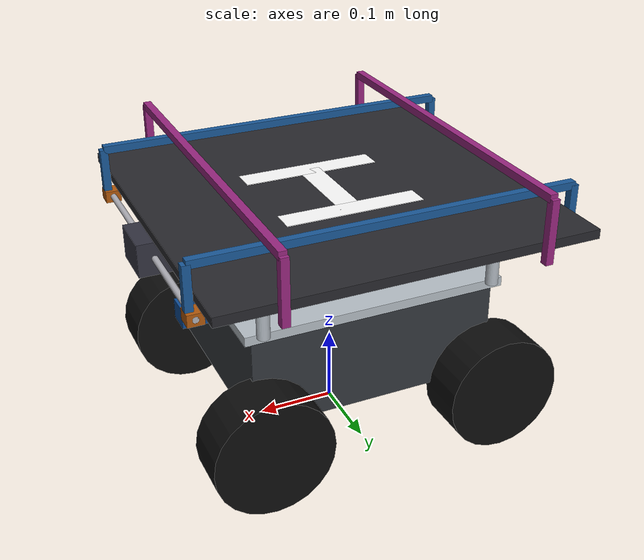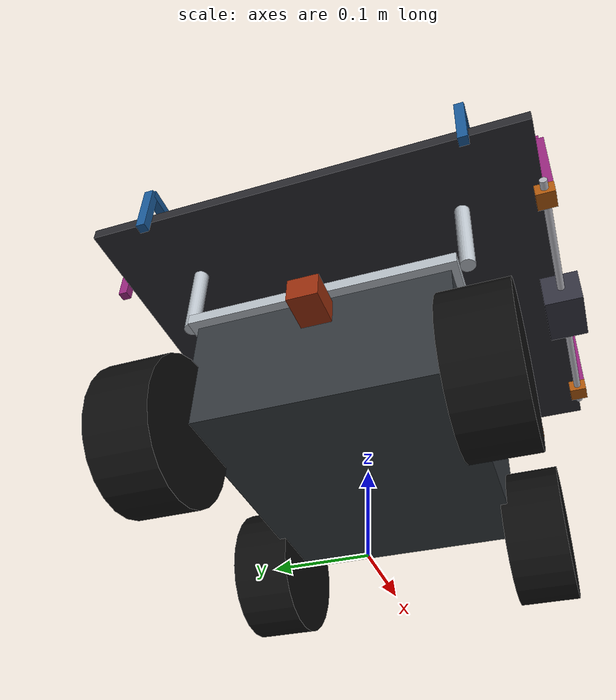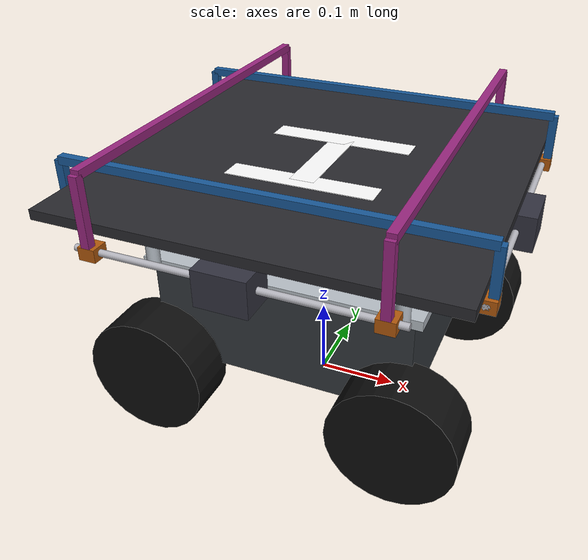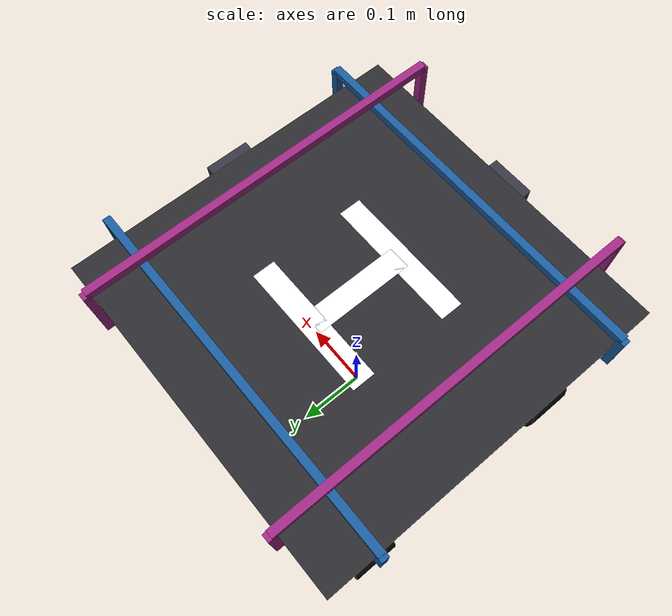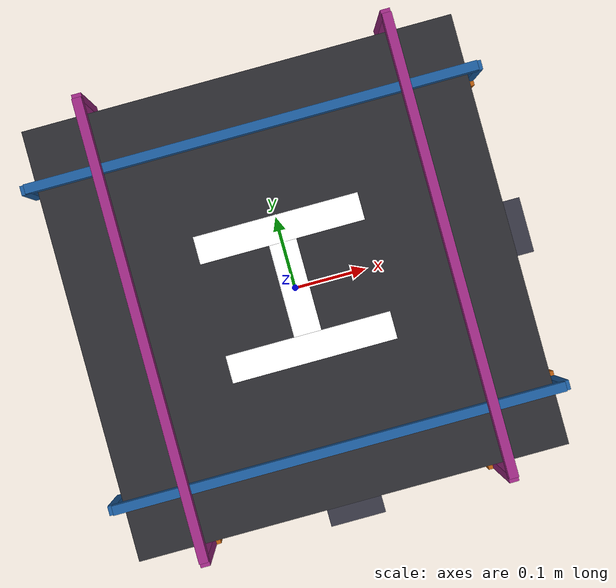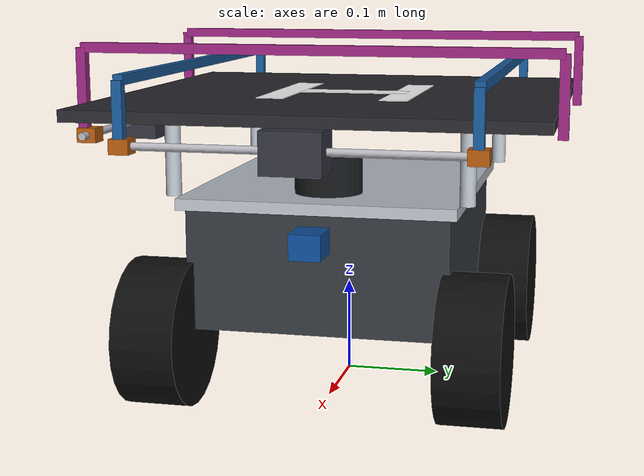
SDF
<?xml version="1.0"?>
<sdf version="1.9">
  <model name="r680_4wd">
    <self_collide>false</self_collide>

    <link name="base_link">
      <!-- base_link 与轮轴同高（轮半径 0.076） -->
      <pose>0 0 0.076 0 0 0</pose>
      <inertial>
        <mass>16.0</mass>
        <pose>0 0 0.070 0 0 0</pose>
        <inertia>
          <ixx>0.104700</ixx><iyy>0.144033</iyy><izz>0.233733</izz>
        </inertia>
      </inertial>
      <!-- 简化碰撞体：底部距地约 81 mm，不遮挡车轮 -->
      <collision name="body_collision">
        <pose>0 0 0.070 0 0 0</pose>
        <geometry><box><size>0.320 0.270 0.130</size></box></geometry>
      </collision>
      <visual name="body_visual">
        <pose>0 0 0.070 0 0 0</pose>
        <geometry><box><size>0.320 0.270 0.130</size></box></geometry>
        <material>
          <ambient>0.10 0.11 0.12 1</ambient>
          <diffuse>0.20 0.22 0.24 1</diffuse>
        </material>
      </visual>
      <!-- 上层安装铝板 -->
      <visual name="deck_visual">
        <pose>0 0 0.136 0 0 0</pose>
        <geometry><box><size>0.340 0.285 0.012</size></box></geometry>
        <material>
          <ambient>0.60 0.62 0.65 1</ambient>
          <diffuse>0.72 0.75 0.78 1</diffuse>
        </material>
      </visual>
    </link>

    <!-- 无人机停机坪：450x450x12 mm。平台以四根立柱架高，底面相对
         base_link 为 0.224 m，高于激光雷达顶面 42 mm，避免几何互穿。
         停机坪为固定载荷，不改变底盘轴距、轮距、转向限位和驱动参数。 -->
    <link name="landing_pad_link">
      <pose relative_to="base_link">0 0 0.230 0 0 0</pose>
      <inertial>
        <mass>1.20</mass>
        <inertia>
          <ixx>0.022090</ixx><iyy>0.022090</iyy><izz>0.044180</izz>
        </inertia>
      </inertial>
      <collision name="pad_collision">
        <geometry><box><size>0.470 0.470 0.012</size></box></geometry>
      </collision>
      <visual name="pad_visual">
        <geometry><box><size>0.470 0.470 0.012</size></box></geometry>
        <material><ambient>0.08 0.08 0.09 1</ambient><diffuse>0.16 0.16 0.18 1</diffuse></material>
      </visual>
      <!-- 白色 H 标识（仅视觉层，略高于平台表面防止闪烁）。 -->
      <visual name="landing_h_left">
        <pose>0 0.065 0.0065 0 0 0</pose>
        <geometry><box><size>0.180 0.030 0.001</size></box></geometry>
        <material><ambient>1 1 1 1</ambient><diffuse>1 1 1 1</diffuse></material>
      </visual>
      <visual name="landing_h_right">
        <pose>0 -0.065 0.0065 0 0 0</pose>
        <geometry><box><size>0.180 0.030 0.001</size></box></geometry>
        <material><ambient>1 1 1 1</ambient><diffuse>1 1 1 1</diffuse></material>
      </visual>
      <visual name="landing_h_crossbar">
        <pose>0 0 0.0065 0 0 0</pose>
        <geometry><box><size>0.030 0.130 0.001</size></box></geometry>
        <material><ambient>1 1 1 1</ambient><diffuse>1 1 1 1</diffuse></material>
      </visual>
      <!-- 支撑柱坐标相对停机坪中心：柱中心低于平台 47 mm。支柱只作
           视觉建模，避免同车激光雷达把它们识别为 0.13~0.30 m 近障；
           平台主体仍保留完整碰撞体，平面外廓由避障 footprint 覆盖。 -->
      <visual name="front_left_support_visual"><pose>0.150 0.150 -0.047 0 0 0</pose><geometry><cylinder><radius>0.008</radius><length>0.082</length></cylinder></geometry><material><ambient>0.55 0.57 0.60 1</ambient><diffuse>0.72 0.75 0.78 1</diffuse></material><visibility_flags>2</visibility_flags></visual>
      <visual name="front_right_support_visual"><pose>0.150 -0.150 -0.047 0 0 0</pose><geometry><cylinder><radius>0.008</radius><length>0.082</length></cylinder></geometry><material><ambient>0.55 0.57 0.60 1</ambient><diffuse>0.72 0.75 0.78 1</diffuse></material><visibility_flags>2</visibility_flags></visual>
      <visual name="rear_left_support_visual"><pose>-0.150 0.150 -0.047 0 0 0</pose><geometry><cylinder><radius>0.008</radius><length>0.082</length></cylinder></geometry><material><ambient>0.55 0.57 0.60 1</ambient><diffuse>0.72 0.75 0.78 1</diffuse></material><visibility_flags>2</visibility_flags></visual>
      <visual name="rear_right_support_visual"><pose>-0.150 -0.150 -0.047 0 0 0</pose><geometry><cylinder><radius>0.008</radius><length>0.082</length></cylinder></geometry><material><ambient>0.55 0.57 0.60 1</ambient><diffuse>0.72 0.75 0.78 1</diffuse></material><visibility_flags>2</visibility_flags></visual>
    </link>
    <joint name="landing_pad_joint" type="fixed"><parent>base_link</parent><child>landing_pad_link</child></joint>

    <link name="screw_motor_a_link">
      <pose relative_to="landing_pad_link">0.235 0 -0.027 0 0 0</pose>
      <inertial><mass>0.28</mass><inertia><ixx>0.0001</ixx><iyy>0.0001</iyy><izz>0.0001</izz></inertia></inertial>
      <collision name="motor_collision">
        <geometry><box><size>0.042 0.060 0.042</size></box></geometry>
      </collision>
      <visual name="motor_visual">
        <geometry><box><size>0.042 0.060 0.042</size></box></geometry>
        <material><ambient>0.10 0.10 0.12 1</ambient><diffuse>0.20 0.20 0.25 1</diffuse></material>
      </visual>
      <!-- T8 丝杆（中段 40mm 藏于电机体内）：轴沿 Y -->
      <visual name="screw_visual">
        <pose>0 0 0 1.57079632679 0 0</pose>
        <geometry><cylinder><radius>0.004</radius><length>0.360</length></cylinder></geometry>
        <material><ambient>0.55 0.55 0.58 1</ambient><diffuse>0.70 0.70 0.73 1</diffuse></material>
      </visual>
    </link>
    <joint name="screw_motor_a_joint" type="fixed"><parent>landing_pad_link</parent><child>screw_motor_a_link</child></joint>

    <link name="screw_motor_b_link">
      <pose relative_to="landing_pad_link">0 -0.235 -0.027 0 0 0</pose>
      <inertial><mass>0.28</mass><inertia><ixx>0.0001</ixx><iyy>0.0001</iyy><izz>0.0001</izz></inertia></inertial>
      <collision name="motor_collision">
        <geometry><box><size>0.060 0.042 0.042</size></box></geometry>
      </collision>
      <visual name="motor_visual">
        <geometry><box><size>0.060 0.042 0.042</size></box></geometry>
        <material><ambient>0.10 0.10 0.12 1</ambient><diffuse>0.20 0.20 0.25 1</diffuse></material>
      </visual>
      <!-- T8 丝杆：轴沿 X -->
      <visual name="screw_visual">
        <pose>0 0 0 0 1.57079632679 0</pose>
        <geometry><cylinder><radius>0.004</radius><length>0.360</length></cylinder></geometry>
        <material><ambient>0.55 0.55 0.58 1</ambient><diffuse>0.70 0.70 0.73 1</diffuse></material>
      </visual>
    </link>
    <joint name="screw_motor_b_joint" type="fixed"><parent>landing_pad_link</parent><child>screw_motor_b_link</child></joint>

    <!-- 俯视相机：停机坪正上方 650mm 垂直向下（仿真监控台 /sim 的
         实时俯视图画面）。传感器 +Z（图像上方）朝车头，A 边在画面上方。 -->
    <link name="top_camera_link">
      <pose relative_to="landing_pad_link">0 0 0.650 0 1.57079632679 0</pose>
      <gravity>false</gravity>
      <inertial><mass>0.050</mass><inertia><ixx>0.00001</ixx><iyy>0.00001</iyy><izz>0.00001</izz></inertia></inertial>
      <sensor name="top_camera" type="camera">
        <topic>/model/ground_vehicle/top_camera/image</topic>
        <gz_frame_id>top_camera_link</gz_frame_id>
        <always_on>true</always_on><update_rate>10</update_rate><visualize>false</visualize>
        <camera>
          <horizontal_fov>0.9</horizontal_fov>
          <image><width>480</width><height>480</height><format>R8G8B8</format></image>
          <clip><near>0.1</near><far>10.0</far></clip>
        </camera>
      </sensor>
    </link>
    <joint name="top_camera_joint" type="fixed"><parent>landing_pad_link</parent><child>top_camera_link</child></joint>

    <!-- 组1 推杆（横跨 A↔C，h1=30mm）：link 原点 = 螺母套中心（q=0 即外侧位） -->
    <link name="pusher_a_link">
      <pose relative_to="landing_pad_link">0.235 -0.170 -0.027 0 0 0</pose>
      <inertial><mass>0.15</mass><inertia><ixx>0.0001</ixx><iyy>0.0001</iyy><izz>0.0001</izz></inertia></inertial>
      <collision name="nut_collision">
        <geometry><box><size>0.020 0.020 0.015</size></box></geometry>
      </collision>
      <visual name="nut_visual">
        <geometry><box><size>0.020 0.020 0.015</size></box></geometry>
        <material><ambient>0.55 0.27 0.02 1</ambient><diffuse>0.70 0.35 0.05 1</diffuse></material>
      </visual>
      <!-- 近腿（A 边外侧 x=+0.230）/ 横臂（沿 X，高 h1）/ 远腿（C 边外侧 x=-0.230） -->
      <visual name="leg_near"><pose>0.005 0 0.03525 0 0 0</pose><geometry><box><size>0.010 0.010 0.0555</size></box></geometry><material><ambient>0.05 0.25 0.45 1</ambient><diffuse>0.10 0.35 0.60 1</diffuse></material></visual>
      <collision name="arm_collision"><pose>-0.235 0 0.063 0 0 0</pose><geometry><box><size>0.480 0.010 0.010</size></box></geometry></collision>
      <visual name="arm"><pose>-0.235 0 0.063 0 0 0</pose><geometry><box><size>0.480 0.010 0.010</size></box></geometry><material><ambient>0.05 0.25 0.45 1</ambient><diffuse>0.10 0.35 0.60 1</diffuse></material></visual>
      <visual name="leg_far"><pose>-0.475 0 0.03525 0 0 0</pose><geometry><box><size>0.010 0.010 0.0555</size></box></geometry><material><ambient>0.05 0.25 0.45 1</ambient><diffuse>0.10 0.35 0.60 1</diffuse></material></visual>
    </link>
    <joint name="pusher_a_joint" type="prismatic">
      <parent>landing_pad_link</parent><child>pusher_a_link</child>
      <axis><xyz>0 -1 0</xyz><limit><lower>-0.062</lower><upper>0.0</upper><effort>10.0</effort><velocity>0.05</velocity></limit></axis>
    </joint>

    <link name="pusher_c_link">
      <pose relative_to="landing_pad_link">0.235 0.170 -0.027 0 0 0</pose>
      <inertial><mass>0.15</mass><inertia><ixx>0.0001</ixx><iyy>0.0001</iyy><izz>0.0001</izz></inertia></inertial>
      <collision name="nut_collision">
        <geometry><box><size>0.020 0.020 0.015</size></box></geometry>
      </collision>
      <visual name="nut_visual">
        <geometry><box><size>0.020 0.020 0.015</size></box></geometry>
        <material><ambient>0.55 0.27 0.02 1</ambient><diffuse>0.70 0.35 0.05 1</diffuse></material>
      </visual>
      <visual name="leg_near"><pose>0.005 0 0.03525 0 0 0</pose><geometry><box><size>0.010 0.010 0.0555</size></box></geometry><material><ambient>0.05 0.25 0.45 1</ambient><diffuse>0.10 0.35 0.60 1</diffuse></material></visual>
      <collision name="arm_collision"><pose>-0.235 0 0.063 0 0 0</pose><geometry><box><size>0.480 0.010 0.010</size></box></geometry></collision>
      <visual name="arm"><pose>-0.235 0 0.063 0 0 0</pose><geometry><box><size>0.480 0.010 0.010</size></box></geometry><material><ambient>0.05 0.25 0.45 1</ambient><diffuse>0.10 0.35 0.60 1</diffuse></material></visual>
      <visual name="leg_far"><pose>-0.475 0 0.03525 0 0 0</pose><geometry><box><size>0.010 0.010 0.0555</size></box></geometry><material><ambient>0.05 0.25 0.45 1</ambient><diffuse>0.10 0.35 0.60 1</diffuse></material></visual>
    </link>
    <joint name="pusher_c_joint" type="prismatic">
      <parent>landing_pad_link</parent><child>pusher_c_link</child>
      <axis><xyz>0 1 0</xyz><limit><lower>-0.062</lower><upper>0.0</upper><effort>10.0</effort><velocity>0.05</velocity></limit></axis>
    </joint>

    <!-- 组2 推杆（横跨 B↔D，h2=55mm） -->
    <link name="pusher_b_link">
      <pose relative_to="landing_pad_link">0.160 -0.235 -0.027 0 0 0</pose>
      <inertial><mass>0.15</mass><inertia><ixx>0.0001</ixx><iyy>0.0001</iyy><izz>0.0001</izz></inertia></inertial>
      <collision name="nut_collision">
        <geometry><box><size>0.020 0.020 0.015</size></box></geometry>
      </collision>
      <visual name="nut_visual">
        <geometry><box><size>0.020 0.020 0.015</size></box></geometry>
        <material><ambient>0.55 0.27 0.02 1</ambient><diffuse>0.70 0.35 0.05 1</diffuse></material>
      </visual>
      <!-- 近腿（B 边外侧 y=-0.230）/ 横臂（沿 Y，高 h2）/ 远腿（D 边外侧 y=+0.230） -->
      <visual name="leg_near"><pose>0 -0.005 0.04775 0 0 0</pose><geometry><box><size>0.010 0.010 0.0805</size></box></geometry><material><ambient>0.45 0.10 0.35 1</ambient><diffuse>0.60 0.15 0.50 1</diffuse></material></visual>
      <collision name="arm_collision"><pose>0 0.235 0.088 0 0 0</pose><geometry><box><size>0.010 0.480 0.010</size></box></geometry></collision>
      <visual name="arm"><pose>0 0.235 0.088 0 0 0</pose><geometry><box><size>0.010 0.480 0.010</size></box></geometry><material><ambient>0.45 0.10 0.35 1</ambient><diffuse>0.60 0.15 0.50 1</diffuse></material></visual>
      <visual name="leg_far"><pose>0 0.475 0.04775 0 0 0</pose><geometry><box><size>0.010 0.010 0.0805</size></box></geometry><material><ambient>0.45 0.10 0.35 1</ambient><diffuse>0.60 0.15 0.50 1</diffuse></material></visual>
    </link>
    <joint name="pusher_b_joint" type="prismatic">
      <parent>landing_pad_link</parent><child>pusher_b_link</child>
      <axis><xyz>1 0 0</xyz><limit><lower>-0.062</lower><upper>0.0</upper><effort>10.0</effort><velocity>0.05</velocity></limit></axis>
    </joint>

    <link name="pusher_d_link">
      <pose relative_to="landing_pad_link">-0.160 -0.235 -0.027 0 0 0</pose>
      <inertial><mass>0.15</mass><inertia><ixx>0.0001</ixx><iyy>0.0001</iyy><izz>0.0001</izz></inertia></inertial>
      <collision name="nut_collision">
        <geometry><box><size>0.020 0.020 0.015</size></box></geometry>
      </collision>
      <visual name="nut_visual">
        <geometry><box><size>0.020 0.020 0.015</size></box></geometry>
        <material><ambient>0.55 0.27 0.02 1</ambient><diffuse>0.70 0.35 0.05 1</diffuse></material>
      </visual>
      <visual name="leg_near"><pose>0 -0.005 0.04775 0 0 0</pose><geometry><box><size>0.010 0.010 0.0805</size></box></geometry><material><ambient>0.45 0.10 0.35 1</ambient><diffuse>0.60 0.15 0.50 1</diffuse></material></visual>
      <collision name="arm_collision"><pose>0 0.235 0.088 0 0 0</pose><geometry><box><size>0.010 0.480 0.010</size></box></geometry></collision>
      <visual name="arm"><pose>0 0.235 0.088 0 0 0</pose><geometry><box><size>0.010 0.480 0.010</size></box></geometry><material><ambient>0.45 0.10 0.35 1</ambient><diffuse>0.60 0.15 0.50 1</diffuse></material></visual>
      <visual name="leg_far"><pose>0 0.475 0.04775 0 0 0</pose><geometry><box><size>0.010 0.010 0.0805</size></box></geometry><material><ambient>0.45 0.10 0.35 1</ambient><diffuse>0.60 0.15 0.50 1</diffuse></material></visual>
    </link>
    <joint name="pusher_d_joint" type="prismatic">
      <parent>landing_pad_link</parent><child>pusher_d_link</child>
      <axis><xyz>-1 0 0</xyz><limit><lower>-0.062</lower><upper>0.0</upper><effort>10.0</effort><velocity>0.05</velocity></limit></axis>
    </joint>

    <!-- 推杆关节位置控制（每关节一个实例；q=0 外侧，-0.057 内侧） -->
    <plugin filename="gz-sim-joint-position-controller-system" name="gz::sim::systems::JointPositionController">
      <joint_name>pusher_a_joint</joint_name>
      <topic>/model/ground_vehicle/pusher_a/cmd_pos</topic>
      <initial_position>0.0</initial_position>
    </plugin>
    <plugin filename="gz-sim-joint-position-controller-system" name="gz::sim::systems::JointPositionController">
      <joint_name>pusher_c_joint</joint_name>
      <topic>/model/ground_vehicle/pusher_c/cmd_pos</topic>
      <initial_position>0.0</initial_position>
    </plugin>
    <plugin filename="gz-sim-joint-position-controller-system" name="gz::sim::systems::JointPositionController">
      <joint_name>pusher_b_joint</joint_name>
      <topic>/model/ground_vehicle/pusher_b/cmd_pos</topic>
      <initial_position>0.0</initial_position>
    </plugin>
    <plugin filename="gz-sim-joint-position-controller-system" name="gz::sim::systems::JointPositionController">
      <joint_name>pusher_d_joint</joint_name>
      <topic>/model/ground_vehicle/pusher_d/cmd_pos</topic>
      <initial_position>0.0</initial_position>
    </plugin>
    <plugin filename="gz-sim-joint-state-publisher-system" name="gz::sim::systems::JointStatePublisher">
      <joint_name>pusher_a_joint</joint_name>
      <joint_name>pusher_b_joint</joint_name>
      <joint_name>pusher_c_joint</joint_name>
      <joint_name>pusher_d_joint</joint_name>
      <topic>/model/ground_vehicle/joint_states</topic>
    </plugin>
    <!-- 注：推杆实际位置核对用 SceneBroadcaster 的
         /world/r680_test_field/dynamic_pose/info（joint_states 只含关节元数据） -->

    <!-- 前轮转向节（kingpin）：垂直轴 revolute 关节挂在 base_link 下，
         前轮滚转关节再挂到转向节下。转向角限位 ±0.5 rad（约 28.6°），
         正转向角 = 左转（绕 +Z 逆时针）。 -->
    <link name="front_left_steer_link">
      <pose>0.155 0.160 0.076 0 0 0</pose>
      <inertial><mass>0.3</mass><inertia><ixx>0.0001</ixx><iyy>0.0001</iyy><izz>0.0001</izz></inertia></inertial>
      <visual name="visual">
        <geometry><box><size>0.030 0.030 0.060</size></box></geometry>
        <material><ambient>0.30 0.30 0.32 1</ambient><diffuse>0.45 0.45 0.48 1</diffuse></material>
      </visual>
    </link>
    <link name="front_right_steer_link">
      <pose>0.155 -0.160 0.076 0 0 0</pose>
      <inertial><mass>0.3</mass><inertia><ixx>0.0001</ixx><iyy>0.0001</iyy><izz>0.0001</izz></inertia></inertial>
      <visual name="visual">
        <geometry><box><size>0.030 0.030 0.060</size></box></geometry>
        <material><ambient>0.30 0.30 0.32 1</ambient><diffuse>0.45 0.45 0.48 1</diffuse></material>
      </visual>
    </link>

    <!-- 车轮 link 滚转 +90 度，关节局部 Z 轴即轮轴（指向车体 -Y 右侧）；
         取关节轴 -Z（即车体 +Y），使正关节速度驱动车辆向 +X 前进。
         阿克曼底盘车轮纯滚动无侧滑，mu/mu2 均为 1.0（不再需要滑移转向的
         低横向摩擦）。 -->
    <link name="front_left_wheel_link">
      <pose>0.155 0.160 0.076 1.57079632679 0 0</pose>
      <inertial><mass>1.2</mass><inertia><ixx>0.0021553</ixx><iyy>0.0021553</iyy><izz>0.0034656</izz></inertia></inertial>
      <collision name="collision">
        <geometry><cylinder><radius>0.076</radius><length>0.065</length></cylinder></geometry>
        <surface><friction><ode><mu>1.0</mu><mu2>1.0</mu2></ode></friction></surface>
      </collision>
      <visual name="visual">
        <geometry><cylinder><radius>0.076</radius><length>0.065</length></cylinder></geometry>
        <material><ambient>0.02 0.02 0.02 1</ambient><diffuse>0.05 0.05 0.05 1</diffuse></material>
      </visual>
    </link>
    <link name="front_right_wheel_link">
      <pose>0.155 -0.160 0.076 1.57079632679 0 0</pose>
      <inertial><mass>1.2</mass><inertia><ixx>0.0021553</ixx><iyy>0.0021553</iyy><izz>0.0034656</izz></inertia></inertial>
      <collision name="collision">
        <geometry><cylinder><radius>0.076</radius><length>0.065</length></cylinder></geometry>
        <surface><friction><ode><mu>1.0</mu><mu2>1.0</mu2></ode></friction></surface>
      </collision>
      <visual name="visual">
        <geometry><cylinder><radius>0.076</radius><length>0.065</length></cylinder></geometry>
        <material><ambient>0.02 0.02 0.02 1</ambient><diffuse>0.05 0.05 0.05 1</diffuse></material>
      </visual>
    </link>
    <link name="rear_left_wheel_link">
      <pose>-0.155 0.160 0.076 1.57079632679 0 0</pose>
      <inertial><mass>1.2</mass><inertia><ixx>0.0021553</ixx><iyy>0.0021553</iyy><izz>0.0034656</izz></inertia></inertial>
      <collision name="collision">
        <geometry><cylinder><radius>0.076</radius><length>0.065</length></cylinder></geometry>
        <surface><friction><ode><mu>1.0</mu><mu2>1.0</mu2></ode></friction></surface>
      </collision>
      <visual name="visual">
        <geometry><cylinder><radius>0.076</radius><length>0.065</length></cylinder></geometry>
        <material><ambient>0.02 0.02 0.02 1</ambient><diffuse>0.05 0.05 0.05 1</diffuse></material>
      </visual>
    </link>
    <link name="rear_right_wheel_link">
      <pose>-0.155 -0.160 0.076 1.57079632679 0 0</pose>
      <inertial><mass>1.2</mass><inertia><ixx>0.0021553</ixx><iyy>0.0021553</iyy><izz>0.0034656</izz></inertia></inertial>
      <collision name="collision">
        <geometry><cylinder><radius>0.076</radius><length>0.065</length></cylinder></geometry>
        <surface><friction><ode><mu>1.0</mu><mu2>1.0</mu2></ode></friction></surface>
      </collision>
      <visual name="visual">
        <geometry><cylinder><radius>0.076</radius><length>0.065</length></cylinder></geometry>
        <material><ambient>0.02 0.02 0.02 1</ambient><diffuse>0.05 0.05 0.05 1</diffuse></material>
      </visual>
    </link>

    <joint name="front_left_steer_joint" type="revolute">
      <parent>base_link</parent><child>front_left_steer_link</child>
      <axis><xyz>0 0 1</xyz><limit><lower>-0.5</lower><upper>0.5</upper><effort>10.0</effort><velocity>5.0</velocity></limit></axis>
    </joint>
    <joint name="front_right_steer_joint" type="revolute">
      <parent>base_link</parent><child>front_right_steer_link</child>
      <axis><xyz>0 0 1</xyz><limit><lower>-0.5</lower><upper>0.5</upper><effort>10.0</effort><velocity>5.0</velocity></limit></axis>
    </joint>
    <joint name="front_left_wheel_joint" type="revolute">
      <parent>front_left_steer_link</parent><child>front_left_wheel_link</child>
      <axis><xyz>0 0 -1</xyz><limit><lower>-1.0e16</lower><upper>1.0e16</upper></limit></axis>
    </joint>
    <joint name="front_right_wheel_joint" type="revolute">
      <parent>front_right_steer_link</parent><child>front_right_wheel_link</child>
      <axis><xyz>0 0 -1</xyz><limit><lower>-1.0e16</lower><upper>1.0e16</upper></limit></axis>
    </joint>
    <joint name="rear_left_wheel_joint" type="revolute">
      <parent>base_link</parent><child>rear_left_wheel_link</child>
      <axis><xyz>0 0 -1</xyz><limit><lower>-1.0e16</lower><upper>1.0e16</upper></limit></axis>
    </joint>
    <joint name="rear_right_wheel_joint" type="revolute">
      <parent>base_link</parent><child>rear_right_wheel_link</child>
      <axis><xyz>0 0 -1</xyz><limit><lower>-1.0e16</lower><upper>1.0e16</upper></limit></axis>
    </joint>

    <!-- 顶部激光雷达：URDF laser_frame 安装位 (0.100, 0, 0.162) -->
    <link name="laser_frame">
      <pose relative_to="base_link">0.100 0 0.162 0 0 0</pose>
      <gravity>false</gravity>
      <inertial><mass>0.220</mass><inertia><ixx>0.000125</ixx><iyy>0.000125</iyy><izz>0.000135</izz></inertia></inertial>
      <visual name="visual">
        <geometry><cylinder><radius>0.035</radius><length>0.040</length></cylinder></geometry>
        <material><ambient>0.03 0.04 0.05 1</ambient><diffuse>0.08 0.09 0.10 1</diffuse></material>
      </visual>
      <sensor name="lidar" type="gpu_lidar">
        <topic>/model/ground_vehicle/scan</topic>
        <gz_frame_id>laser_frame</gz_frame_id>
        <always_on>true</always_on><update_rate>10</update_rate><visualize>false</visualize>
        <lidar>
          <!-- 只扫描 visibility flag bit 0；支柱使用 bit 1，GUI/相机仍可见。 -->
          <visibility_mask>1</visibility_mask>
          <scan><horizontal><samples>360</samples><resolution>1</resolution><min_angle>-3.14159265359</min_angle><max_angle>3.14159265359</max_angle></horizontal></scan>
          <range><min>0.12</min><max>25.0</max><resolution>0.01</resolution></range>
          <noise><type>gaussian</type><mean>0.0</mean><stddev>0.01</stddev></noise>
        </lidar>
      </sensor>
    </link>
    <joint name="lidar_joint" type="fixed"><parent>base_link</parent><child>laser_frame</child></joint>

    <!-- 车头相机：URDF camera_link 安装位 (0.185, 0, 0.105)，X 朝车头 -->
    <link name="camera_link">
      <pose relative_to="base_link">0.185 0 0.105 0 0 0</pose>
      <gravity>false</gravity>
      <inertial><mass>0.080</mass><inertia><ixx>0.000015</ixx><iyy>0.000020</iyy><izz>0.000020</izz></inertia></inertial>
      <visual name="visual">
        <geometry><box><size>0.040 0.032 0.026</size></box></geometry>
        <material><ambient>0.02 0.20 0.45 1</ambient><diffuse>0.05 0.30 0.60 1</diffuse></material>
      </visual>
      <sensor name="front_camera" type="camera">
        <topic>/model/ground_vehicle/front_camera</topic>
        <gz_frame_id>camera_link</gz_frame_id>
        <always_on>true</always_on><update_rate>10</update_rate><visualize>false</visualize>
        <camera>
          <horizontal_fov>1.3962634</horizontal_fov>
          <image><width>320</width><height>180</height><format>R8G8B8</format></image>
          <clip><near>0.08</near><far>30.0</far></clip>
          <noise><type>gaussian</type><mean>0.0</mean><stddev>0.003</stddev></noise>
        </camera>
      </sensor>
    </link>
    <joint name="camera_joint" type="fixed"><parent>base_link</parent><child>camera_link</child></joint>

    <!-- 车尾相机：与车头相机同高对称安装，绕 Z 转 π 使 X 朝车尾 -->
    <link name="rear_camera_link">
      <pose relative_to="base_link">-0.185 0 0.105 0 0 3.14159265359</pose>
      <gravity>false</gravity>
      <inertial><mass>0.080</mass><inertia><ixx>0.000015</ixx><iyy>0.000020</iyy><izz>0.000020</izz></inertia></inertial>
      <visual name="visual">
        <geometry><box><size>0.040 0.032 0.026</size></box></geometry>
        <material><ambient>0.45 0.10 0.02 1</ambient><diffuse>0.60 0.18 0.05 1</diffuse></material>
      </visual>
      <sensor name="rear_camera" type="camera">
        <!-- 注意：gz camera_info 发布在图像话题的父路径 + /camera_info，
             嵌套一层使后摄 camera_info 落在独立话题，不与前摄混流 -->
        <topic>/model/ground_vehicle/rear_camera/image</topic>
        <gz_frame_id>rear_camera_link</gz_frame_id>
        <always_on>true</always_on><update_rate>10</update_rate><visualize>false</visualize>
        <camera>
          <horizontal_fov>1.3962634</horizontal_fov>
          <image><width>320</width><height>180</height><format>R8G8B8</format></image>
          <clip><near>0.08</near><far>30.0</far></clip>
          <noise><type>gaussian</type><mean>0.0</mean><stddev>0.003</stddev></noise>
        </camera>
      </sensor>
    </link>
    <joint name="rear_camera_joint" type="fixed"><parent>base_link</parent><child>rear_camera_link</child></joint>

    <link name="imu_link">
      <pose relative_to="base_link">0 0 0.04 0 0 0</pose>
      <gravity>false</gravity>
      <inertial><mass>0.02</mass><inertia><ixx>0.00001</ixx><iyy>0.00001</iyy><izz>0.00001</izz></inertia></inertial>
      <sensor name="imu" type="imu">
        <topic>/model/ground_vehicle/imu</topic>
        <gz_frame_id>imu_link</gz_frame_id>
        <always_on>true</always_on><update_rate>50</update_rate>
      </sensor>
    </link>
    <joint name="imu_mount" type="fixed"><parent>base_link</parent><child>imu_link</child></joint>

    <!-- 阿克曼转向插件：收 Twist cmd_vel，内部解算左右前轮转向角（满足
         阿克曼几何）与后轮驱动速度；话题与里程计契约与原差速插件一致。 -->
    <plugin filename="gz-sim-ackermann-steering-system" name="gz::sim::systems::AckermannSteering">
      <left_steering_joint>front_left_steer_joint</left_steering_joint>
      <right_steering_joint>front_right_steer_joint</right_steering_joint>
      <left_joint>rear_left_wheel_joint</left_joint>
      <right_joint>rear_right_wheel_joint</right_joint>
      <steering_limit>0.5</steering_limit>
      <wheel_base>0.31</wheel_base>
      <kingpin_width>0.32</kingpin_width>
      <wheel_separation>0.32</wheel_separation>
      <wheel_radius>0.076</wheel_radius>
      <topic>/model/ground_vehicle/cmd_vel</topic>
      <odom_topic>/model/ground_vehicle/odometry</odom_topic>
      <tf_topic>/model/ground_vehicle/tf</tf_topic>
      <frame_id>odom</frame_id>
      <child_frame_id>base_footprint</child_frame_id>
      <odom_publish_frequency>30</odom_publish_frequency>
      <max_linear_acceleration>1.0</max_linear_acceleration>
      <max_angular_acceleration>2.0</max_angular_acceleration>
    </plugin>
  </model>
</sdf>
